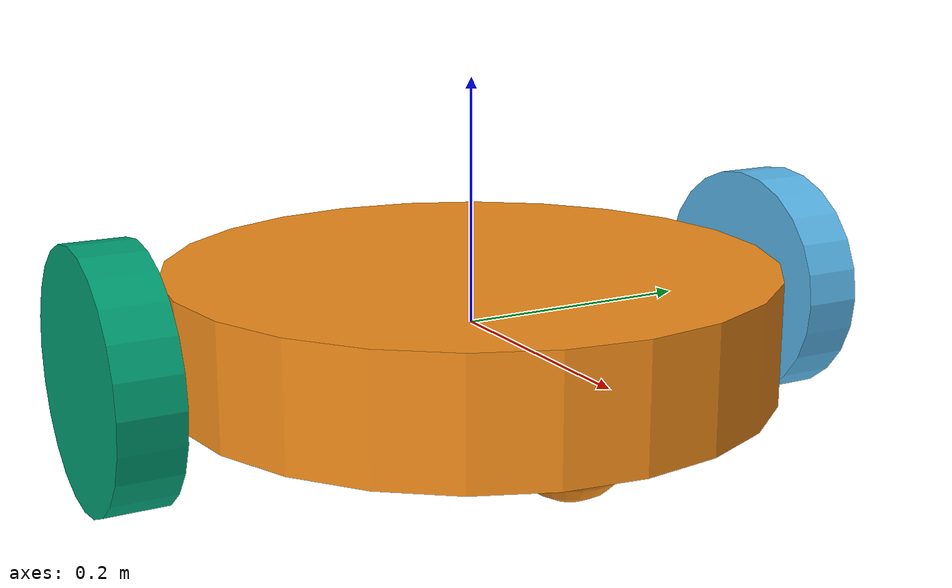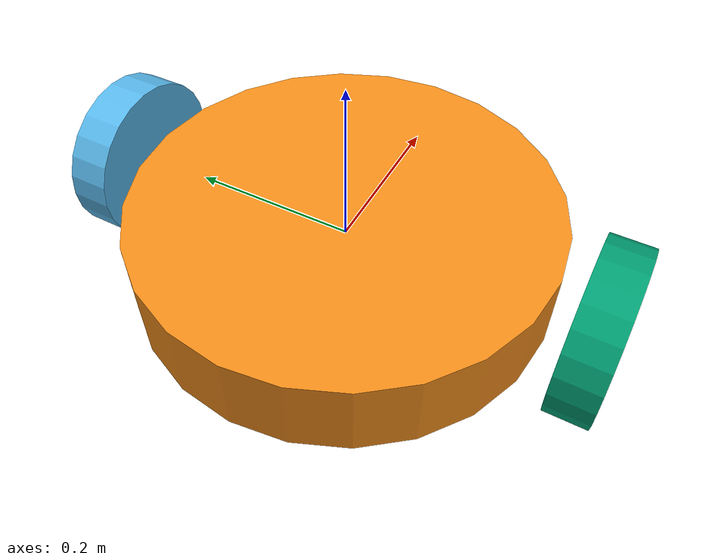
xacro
<?xml version="1.0"?>
<robot name="irobot" xmlns:xacro="http://www.ros.org/wiki/xacro">

    <xacro:include filename="$(find irobot_description)/urdf/irobot.gazebo" />
	<xacro:include filename="$(find irobot_description)/urdf/materials.xacro" />
	<xacro:include filename="$(find irobot_description)/urdf/macros.xacro" />

    <link name="chassis">
        <pose> 0 0 0.1 0 0 0 </pose>
        <inertial>
            <mass value="10.0"/>
            <origin xyz="0 0 0.1" rpy="0 0 0"/>
            <inertia ixx="0.1" ixy="0" ixz="0" iyy="0.1" iyz="0" izz="0.1"/>
        </inertial>

        <collision name="chassis_collision">
            <geometry>
                <cylinder radius="0.25" length="0.1"/>
            </geometry>
        </collision>
        <visual name="chassis_visual">
            <origin xyz="0 0 0" rpy="0 0 0"/>
            <geometry>
                <cylinder radius="0.25" length="0.1"/>
            </geometry>
        </visual>

        <collision name='caster_back_collision'>
            <origin xyz="-0.15 0 -0.0499" rpy=" 0 0 0"/>
            <geometry>
                <sphere radius="0.05"/>
            </geometry>
            <surface>
                <friction>
                <ode>
                    <mu>0</mu>
                    <mu2>0</mu2>
                    <slip1>1.0</slip1>
                    <slip2>1.0</slip2>
                </ode>
                </friction>
            </surface>
		</collision>
		<visual name='caster_back_visual'>
            <origin xyz="-0.15 0 -0.0499" rpy=" 0 0 0"/>
            <geometry>
                <sphere radius="0.05"/>
            </geometry>
		</visual>

		<collision name='caster_front_collision'>
            <origin xyz="0.15 0 -0.0499" rpy=" 0 0 0"/>
            <geometry>
                <sphere radius="0.05"/>
            </geometry>
            <surface>
                <friction>
                <ode>
                    <mu>0</mu>
                    <mu2>0</mu2>
                    <slip1>1.0</slip1>
                    <slip2>1.0</slip2>
                </ode>
                </friction>
            </surface>
		</collision>
		<visual name='caster_front_visual'>
		<origin xyz="0.15 0 -0.0499" rpy=" 0 0 0"/>
		<geometry>
			<sphere radius="0.05"/>
		</geometry>
		</visual>

    </link>

    <link name="left_wheel">
		<!--origin xyz="0.1 0.13 0.1" rpy="0 1.5707 1.5707"/-->
		<collision name="left_wheel_collision">
            <origin xyz="0 0 0" rpy="0 1.5707 1.5707"/>
            <geometry>
                <cylinder radius="0.1" length="0.05"/>
            </geometry>
		</collision>
		<visual name="left_wheel_visual">
            <origin xyz="0 0 0" rpy="0 1.5707 1.5707"/>
            <geometry>
                <cylinder radius="0.1" length="0.05"/>
            </geometry>
		</visual>
		<inertial>
            <origin xyz="0 0 0" rpy="0 1.5707 1.5707"/>
            <mass value="5"/>
            <inertia
                ixx=".1" ixy="0" ixz="0"
                iyy=".1" iyz="0"
                izz=".1"/>
		</inertial>
	</link>

	<link name="right_wheel">
		<!--origin xyz="0.1 -0.13 0.1" rpy="0 1.5707 1.5707"/-->
		<collision name="right_wheel_collision">
            <origin xyz="0 0 0" rpy="0 1.5707 1.5707"/>
            <geometry>
                <cylinder radius="0.1" length="0.05"/>
            </geometry>
		</collision>
		<visual name="right_wheel_visual">
            <origin xyz="0 0 0" rpy="0 1.5707 1.5707"/>
            <geometry>
                <cylinder radius="0.1" length="0.05"/>
            </geometry>
		</visual>
		<inertial>
            <origin xyz="0 0 0" rpy="0 1.5707 1.5707"/>
            <mass value="5"/>
            <inertia
                ixx=".1" ixy="0" ixz="0"
                iyy=".1" iyz="0"
                izz=".1"/>
		</inertial>
	</link>

	<joint type="continuous" name="left_wheel_hinge">
		<origin xyz="0 0.3 0" rpy="0 0 0"/>
		<!--origin xyz="0.1 0.13 0" rpy="0 1.5707 1.5707"/-->
		<child link="left_wheel"/>
		<parent link="chassis"/>
		<axis xyz="0 1 0" rpy="0 0 0"/>
		<limit effort="10000" velocity="1000"/>
		<joint_properties damping="1.0" friction="1.0"/>
	</joint>

	<joint type="continuous" name="right_wheel_hinge">
		<origin xyz="0 -0.3 0" rpy="0 0 0"/>
		<!--origin xyz="0.1 -0.13 0" rpy="0 1.5707 1.5707"/-->
		<child link="right_wheel"/>
		<parent link="chassis"/>
		<axis xyz="0 1 0" rpy="0 0 0"/>
		<limit effort="10000" velocity="1000"/>
		<joint_properties damping="1.0" friction="1.0"/>
	</joint>

</robot>
